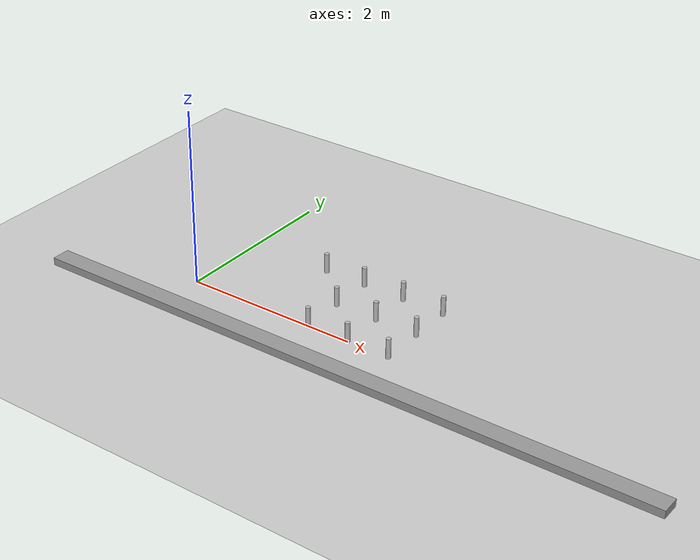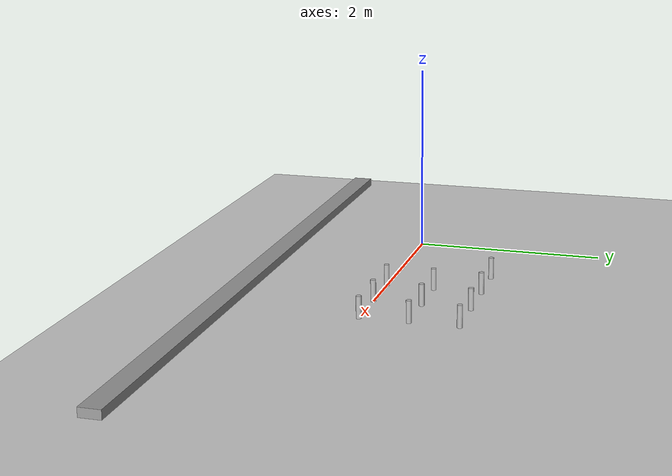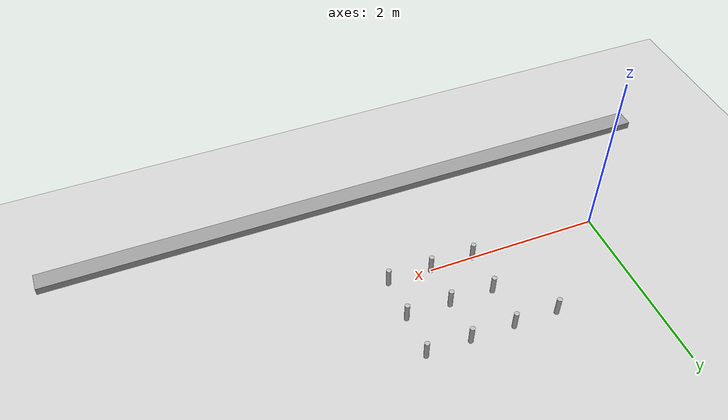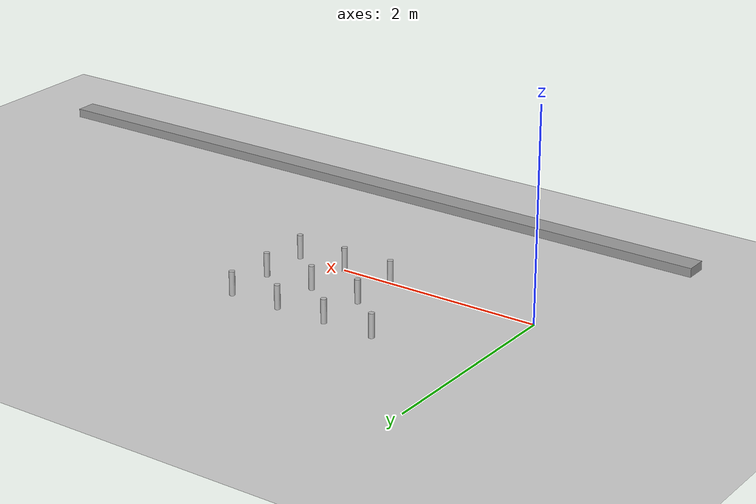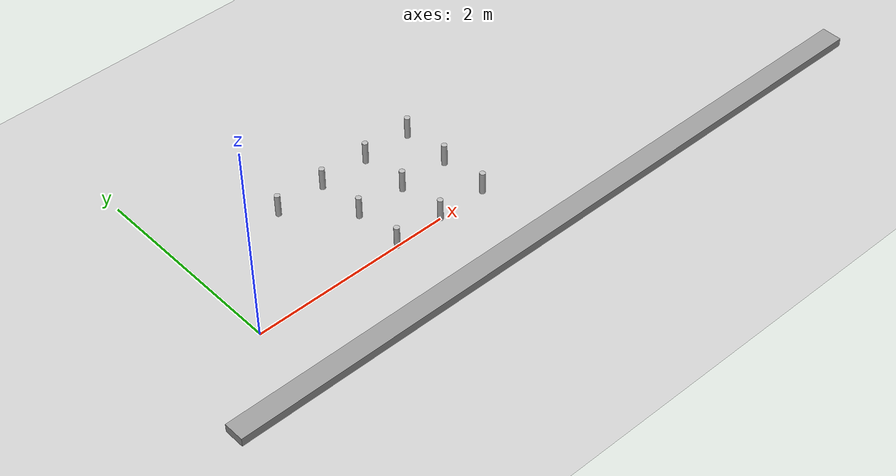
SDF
<sdf version="1.6">
 <world name="default">
  <model name="ground_plane">
   <static>1</static>
   <link name="link">
    <collision name="collision">
     <geometry><plane><normal>0 0 1</normal><size>100 100</size></plane></geometry>
     <surface><friction><ode><mu>100</mu><mu2>50</mu2></ode></friction></surface>
    </collision>
    <visual name="visual">
     <cast_shadows>0</cast_shadows>
     <geometry><plane><normal>0 0 1</normal><size>100 100</size></plane></geometry>
     <material>
      <script><uri>file://media/materials/scripts/gazebo.material</uri><name>Gazebo/Grey</name></script>
     </material>
    </visual>
   </link>
  </model>
  <model name="wall4">
   <static>1</static>
   <link name="link">
    <pose>0 0 0.42 0 -0 0</pose>
    <collision name="collision"><geometry><box><size>7 0.2 0.084</size></box></geometry></collision>
    <visual name="visual">
     <cast_shadows>0</cast_shadows>
     <geometry><box><size>7 0.2 0.084</size></box></geometry>
     <material>
      <script>
       <uri>model://grey_wall/materials/scripts</uri>
       <uri>model://grey_wall/materials/textures</uri>
       <name>vrc/grey_wall</name>
      </script>
     </material>
    </visual>
   </link>
   <pose>2.5 -1 0 0 -0 0</pose>
  </model>
  <model name="can1.01.0">
   <link name="link">
    <pose>0 0 0.115 0 -0 0</pose>
    <inertial>
     <mass>39</mass>
     <inertia><ixx>0.00058</ixx><ixy>0</ixy><ixz>0</ixz><iyy>0.00058</iyy><iyz>0</iyz><izz>0.00019</izz></inertia>
    </inertial>
    <collision name="collision">
     <geometry><cylinder><radius>0.0275</radius><length>0.23</length></cylinder></geometry>
    </collision>
    <visual name="visual">
     <geometry><cylinder><radius>0.0275</radius><length>0.23</length></cylinder></geometry>
     <material>
      <script>
       <uri>model://beer/materials/scripts</uri>
       <uri>model://beer/materials/textures</uri>
       <name>Beer/Diffuse</name>
      </script>
     </material>
    </visual>
   </link>
   <pose>1.0 1.0 -2e-06 1e-06 0 -9.5e-05</pose>
  </model>
  <model name="can1.50.0">
   <link name="link">
    <pose>0 0 0.115 0 -0 0</pose>
    <inertial>
     <mass>39</mass>
     <inertia><ixx>0.00058</ixx><ixy>0</ixy><ixz>0</ixz><iyy>0.00058</iyy><iyz>0</iyz><izz>0.00019</izz></inertia>
    </inertial>
    <collision name="collision">
     <geometry><cylinder><radius>0.0275</radius><length>0.23</length></cylinder></geometry>
    </collision>
    <visual name="visual">
     <geometry><cylinder><radius>0.0275</radius><length>0.23</length></cylinder></geometry>
     <material>
      <script>
       <uri>model://beer/materials/scripts</uri>
       <uri>model://beer/materials/textures</uri>
       <name>Beer/Diffuse</name>
      </script>
     </material>
    </visual>
   </link>
   <pose>1.5 0.0 -2e-06 1e-06 0 -9.5e-05</pose>
  </model>
  <model name="can1.50.5">
   <link name="link">
    <pose>0 0 0.115 0 -0 0</pose>
    <inertial>
     <mass>39</mass>
     <inertia><ixx>0.00058</ixx><ixy>0</ixy><ixz>0</ixz><iyy>0.00058</iyy><iyz>0</iyz><izz>0.00019</izz></inertia>
    </inertial>
    <collision name="collision">
     <geometry><cylinder><radius>0.0275</radius><length>0.23</length></cylinder></geometry>
    </collision>
    <visual name="visual">
     <geometry><cylinder><radius>0.0275</radius><length>0.23</length></cylinder></geometry>
     <material>
      <script>
       <uri>model://beer/materials/scripts</uri>
       <uri>model://beer/materials/textures</uri>
       <name>Beer/Diffuse</name>
      </script>
     </material>
    </visual>
   </link>
   <pose>1.5 0.5 -2e-06 1e-06 0 -9.5e-05</pose>
  </model>
  <model name="can1.51.0">
   <link name="link">
    <pose>0 0 0.115 0 -0 0</pose>
    <inertial>
     <mass>39</mass>
     <inertia><ixx>0.00058</ixx><ixy>0</ixy><ixz>0</ixz><iyy>0.00058</iyy><iyz>0</iyz><izz>0.00019</izz></inertia>
    </inertial>
    <collision name="collision">
     <geometry><cylinder><radius>0.0275</radius><length>0.23</length></cylinder></geometry>
    </collision>
    <visual name="visual">
     <geometry><cylinder><radius>0.0275</radius><length>0.23</length></cylinder></geometry>
     <material>
      <script>
       <uri>model://beer/materials/scripts</uri>
       <uri>model://beer/materials/textures</uri>
       <name>Beer/Diffuse</name>
      </script>
     </material>
    </visual>
   </link>
   <pose>1.5 1.0 -2e-06 1e-06 0 -9.5e-05</pose>
  </model>
  <model name="can2.00.0">
   <link name="link">
    <pose>0 0 0.115 0 -0 0</pose>
    <inertial>
     <mass>39</mass>
     <inertia><ixx>0.00058</ixx><ixy>0</ixy><ixz>0</ixz><iyy>0.00058</iyy><iyz>0</iyz><izz>0.00019</izz></inertia>
    </inertial>
    <collision name="collision">
     <geometry><cylinder><radius>0.0275</radius><length>0.23</length></cylinder></geometry>
    </collision>
    <visual name="visual">
     <geometry><cylinder><radius>0.0275</radius><length>0.23</length></cylinder></geometry>
     <material>
      <script>
       <uri>model://beer/materials/scripts</uri>
       <uri>model://beer/materials/textures</uri>
       <name>Beer/Diffuse</name>
      </script>
     </material>
    </visual>
   </link>
   <pose>2.0 0.0 -2e-06 1e-06 0 -9.5e-05</pose>
  </model>
  <model name="can2.00.5">
   <link name="link">
    <pose>0 0 0.115 0 -0 0</pose>
    <inertial>
     <mass>39</mass>
     <inertia><ixx>0.00058</ixx><ixy>0</ixy><ixz>0</ixz><iyy>0.00058</iyy><iyz>0</iyz><izz>0.00019</izz></inertia>
    </inertial>
    <collision name="collision">
     <geometry><cylinder><radius>0.0275</radius><length>0.23</length></cylinder></geometry>
    </collision>
    <visual name="visual">
     <geometry><cylinder><radius>0.0275</radius><length>0.23</length></cylinder></geometry>
     <material>
      <script>
       <uri>model://beer/materials/scripts</uri>
       <uri>model://beer/materials/textures</uri>
       <name>Beer/Diffuse</name>
      </script>
     </material>
    </visual>
   </link>
   <pose>2.0 0.5 -2e-06 1e-06 0 -9.5e-05</pose>
  </model>
  <model name="can2.01.0">
   <link name="link">
    <pose>0 0 0.115 0 -0 0</pose>
    <inertial>
     <mass>39</mass>
     <inertia><ixx>0.00058</ixx><ixy>0</ixy><ixz>0</ixz><iyy>0.00058</iyy><iyz>0</iyz><izz>0.00019</izz></inertia>
    </inertial>
    <collision name="collision">
     <geometry><cylinder><radius>0.0275</radius><length>0.23</length></cylinder></geometry>
    </collision>
    <visual name="visual">
     <geometry><cylinder><radius>0.0275</radius><length>0.23</length></cylinder></geometry>
     <material>
      <script>
       <uri>model://beer/materials/scripts</uri>
       <uri>model://beer/materials/textures</uri>
       <name>Beer/Diffuse</name>
      </script>
     </material>
    </visual>
   </link>
   <pose>2.0 1.0 -2e-06 1e-06 0 -9.5e-05</pose>
  </model>
  <model name="can2.50.0">
   <link name="link">
    <pose>0 0 0.115 0 -0 0</pose>
    <inertial>
     <mass>39</mass>
     <inertia><ixx>0.00058</ixx><ixy>0</ixy><ixz>0</ixz><iyy>0.00058</iyy><iyz>0</iyz><izz>0.00019</izz></inertia>
    </inertial>
    <collision name="collision">
     <geometry><cylinder><radius>0.0275</radius><length>0.23</length></cylinder></geometry>
    </collision>
    <visual name="visual">
     <geometry><cylinder><radius>0.0275</radius><length>0.23</length></cylinder></geometry>
     <material>
      <script>
       <uri>model://beer/materials/scripts</uri>
       <uri>model://beer/materials/textures</uri>
       <name>Beer/Diffuse</name>
      </script>
     </material>
    </visual>
   </link>
   <pose>2.5 0.0 -2e-06 1e-06 0 -9.5e-05</pose>
  </model>
  <model name="can2.50.5">
   <link name="link">
    <pose>0 0 0.115 0 -0 0</pose>
    <inertial>
     <mass>39</mass>
     <inertia><ixx>0.00058</ixx><ixy>0</ixy><ixz>0</ixz><iyy>0.00058</iyy><iyz>0</iyz><izz>0.00019</izz></inertia>
    </inertial>
    <collision name="collision">
     <geometry><cylinder><radius>0.0275</radius><length>0.23</length></cylinder></geometry>
    </collision>
    <visual name="visual">
     <geometry><cylinder><radius>0.0275</radius><length>0.23</length></cylinder></geometry>
     <material>
      <script>
       <uri>model://beer/materials/scripts</uri>
       <uri>model://beer/materials/textures</uri>
       <name>Beer/Diffuse</name>
      </script>
     </material>
    </visual>
   </link>
   <pose>2.5 0.5 -2e-06 1e-06 0 -9.5e-05</pose>
  </model>
  <model name="can2.51.0">
   <link name="link">
    <pose>0 0 0.115 0 -0 0</pose>
    <inertial>
     <mass>39</mass>
     <inertia><ixx>0.00058</ixx><ixy>0</ixy><ixz>0</ixz><iyy>0.00058</iyy><iyz>0</iyz><izz>0.00019</izz></inertia>
    </inertial>
    <collision name="collision">
     <geometry><cylinder><radius>0.0275</radius><length>0.23</length></cylinder></geometry>
    </collision>
    <visual name="visual">
     <geometry><cylinder><radius>0.0275</radius><length>0.23</length></cylinder></geometry>
     <material>
      <script>
       <uri>model://beer/materials/scripts</uri>
       <uri>model://beer/materials/textures</uri>
       <name>Beer/Diffuse</name>
      </script>
     </material>
    </visual>
   </link>
   <pose>2.5 1.0 -2e-06 1e-06 0 -9.5e-05</pose>
  </model>
 </world>
</sdf>
